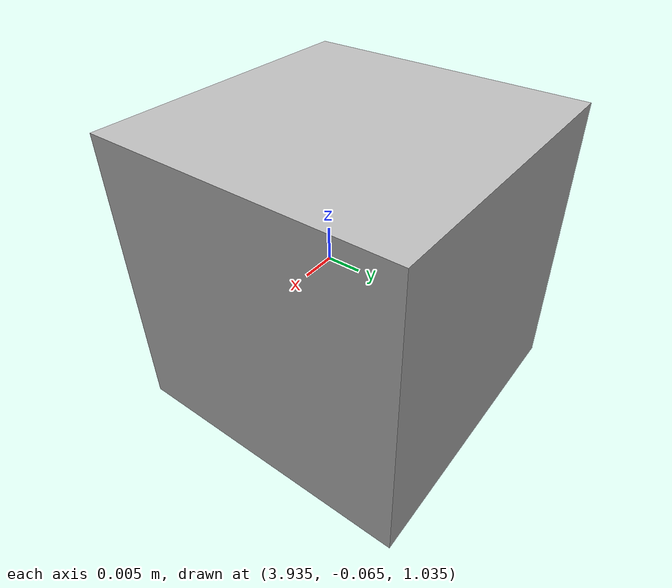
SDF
<?xml version="1.0"?>
<sdf version="1.9">
  <model name="camera">
    <pose>4 0 1.0 0 0 3.14</pose>
    <link name="euro_cam/base_link">
      <pose>0.05 0.05 0.05 0 0 0</pose>
      <inertial>
        <mass>0.01</mass>
        <inertia>
          <ixx>0.000166667</ixx>
          <iyy>0.000166667</iyy>
          <izz>0.000166667</izz>
        </inertia>
      </inertial>
      <collision name="collision">
        <geometry>
          <box>
            <size>0.03 0.03 0.03</size>
          </box>
        </geometry>
      </collision>
      <visual name="visual">
        <geometry>
          <box>
            <size>0.03 0.03 0.03</size>
          </box>
        </geometry>
      </visual>
      <sensor name="imager" type="camera">
        <camera>
          <horizontal_fov>1.0856</horizontal_fov>
          <image>
            <width>640</width>
            <height>480</height>
          </image>
          <clip>
            <near>0.1</near>
            <far>100</far>
          </clip>
        </camera>
        <always_on>1</always_on>
        <update_rate>30</update_rate>
        <visualize>true</visualize>
        <topic>camera/image_raw</topic>
      </sensor>
    </link>
  </model>
</sdf>
